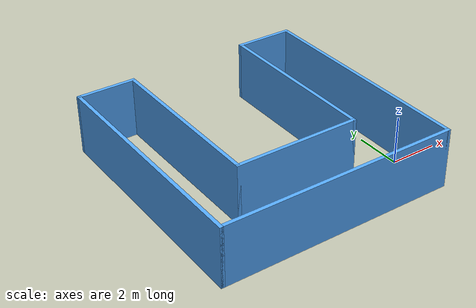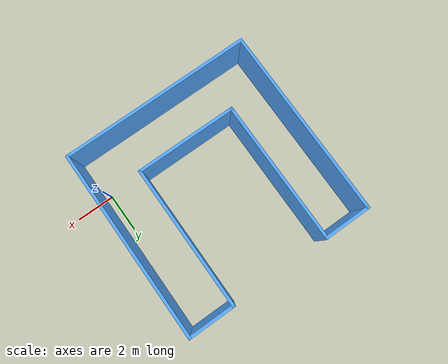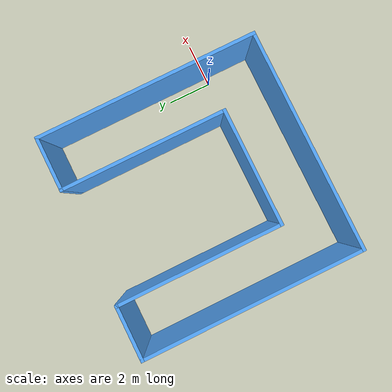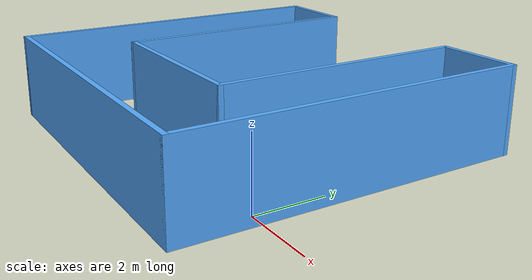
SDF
<?xml version='1.0'?>
<sdf version='1.6'>
  <model name='mybuilding'>
    <pose frame=''>-4.54811 2.73035 0 0 -0 0</pose>
    <link name='Wall_1'>
      <collision name='Wall_1_Collision'>
        <geometry>
          <box>
            <size>2.5 0.15 2.5</size>
          </box>
        </geometry>
        <pose frame=''>0 0 1.25 0 -0 0</pose>
      </collision>
      <visual name='Wall_1_Visual'>
        <pose frame=''>0 0 1.25 0 -0 0</pose>
        <geometry>
          <box>
            <size>2.5 0.15 2.5</size>
          </box>
        </geometry>
        <material>
          <script>
            <uri>file://media/materials/scripts/gazebo.material</uri>
            <name>Gazebo/Grey</name>
          </script>
          <ambient>0.333333 0.666667 1 1</ambient>
        </material>
        <meta>
          <layer>0</layer>
        </meta>
      </visual>
      <pose frame=''>-3.75 4.925 0 0 -0 0</pose>
    </link>
    <link name='Wall_10'>
      <collision name='Wall_10_Collision'>
        <geometry>
          <box>
            <size>2.5 0.15 2.5</size>
          </box>
        </geometry>
        <pose frame=''>0 0 1.25 0 -0 0</pose>
      </collision>
      <visual name='Wall_10_Visual'>
        <pose frame=''>0 0 1.25 0 -0 0</pose>
        <geometry>
          <box>
            <size>2.5 0.15 2.5</size>
          </box>
        </geometry>
        <material>
          <script>
            <uri>file://media/materials/scripts/gazebo.material</uri>
            <name>Gazebo/Grey</name>
          </script>
          <ambient>0.333333 0.666667 1 1</ambient>
        </material>
        <meta>
          <layer>0</layer>
        </meta>
      </visual>
      <pose frame=''>3.75 4.925 0 0 -0 3.14159</pose>
    </link>
    <link name='Wall_11'>
      <collision name='Wall_11_Collision'>
        <geometry>
          <box>
            <size>7.5 0.15 2.5</size>
          </box>
        </geometry>
        <pose frame=''>0 0 1.25 0 -0 0</pose>
      </collision>
      <visual name='Wall_11_Visual'>
        <pose frame=''>0 0 1.25 0 -0 0</pose>
        <geometry>
          <box>
            <size>7.5 0.15 2.5</size>
          </box>
        </geometry>
        <material>
          <script>
            <uri>file://media/materials/scripts/gazebo.material</uri>
            <name>Gazebo/Grey</name>
          </script>
          <ambient>0.333333 0.666667 1 1</ambient>
        </material>
        <meta>
          <layer>0</layer>
        </meta>
      </visual>
      <pose frame=''>2.575 1.25 0 0 0 -1.5708</pose>
    </link>
    <link name='Wall_14'>
      <collision name='Wall_14_Collision'>
        <geometry>
          <box>
            <size>7.5 0.15 2.5</size>
          </box>
        </geometry>
        <pose frame=''>0 0 1.25 0 -0 0</pose>
      </collision>
      <visual name='Wall_14_Visual'>
        <pose frame=''>0 0 1.25 0 -0 0</pose>
        <geometry>
          <box>
            <size>7.5 0.15 2.5</size>
          </box>
        </geometry>
        <material>
          <script>
            <uri>file://media/materials/scripts/gazebo.material</uri>
            <name>Gazebo/Grey</name>
          </script>
          <ambient>0.333333 0.666667 1 1</ambient>
        </material>
        <meta>
          <layer>0</layer>
        </meta>
      </visual>
      <pose frame=''>-2.575 1.25 0 0 0 -1.5708</pose>
    </link>
    <link name='Wall_16'>
      <collision name='Wall_16_Collision'>
        <geometry>
          <box>
            <size>5.3 0.15 2.5</size>
          </box>
        </geometry>
        <pose frame=''>0 0 1.25 0 -0 0</pose>
      </collision>
      <visual name='Wall_16_Visual'>
        <pose frame=''>0 0 1.25 0 -0 0</pose>
        <geometry>
          <box>
            <size>5.3 0.15 2.5</size>
          </box>
        </geometry>
        <material>
          <script>
            <uri>file://media/materials/scripts/gazebo.material</uri>
            <name>Gazebo/Grey</name>
          </script>
          <ambient>0.333333 0.666667 1 1</ambient>
        </material>
        <meta>
          <layer>0</layer>
        </meta>
      </visual>
      <pose frame=''>0 -2.425 0 0 -0 0</pose>
    </link>
    <link name='Wall_7'>
      <collision name='Wall_7_Collision'>
        <geometry>
          <box>
            <size>10 0.15 2.5</size>
          </box>
        </geometry>
        <pose frame=''>0 0 1.25 0 -0 0</pose>
      </collision>
      <visual name='Wall_7_Visual'>
        <pose frame=''>0 0 1.25 0 -0 0</pose>
        <geometry>
          <box>
            <size>10 0.15 2.5</size>
          </box>
        </geometry>
        <material>
          <script>
            <uri>file://media/materials/scripts/gazebo.material</uri>
            <name>Gazebo/Grey</name>
          </script>
          <ambient>0.333333 0.666667 1 1</ambient>
        </material>
        <meta>
          <layer>0</layer>
        </meta>
      </visual>
      <pose frame=''>-4.925 0 0 0 0 -1.5708</pose>
    </link>
    <link name='Wall_8'>
      <collision name='Wall_8_Collision'>
        <geometry>
          <box>
            <size>10 0.15 2.5</size>
          </box>
        </geometry>
        <pose frame=''>0 0 1.25 0 -0 0</pose>
      </collision>
      <visual name='Wall_8_Visual'>
        <pose frame=''>0 0 1.25 0 -0 0</pose>
        <geometry>
          <box>
            <size>10 0.15 2.5</size>
          </box>
        </geometry>
        <material>
          <script>
            <uri>file://media/materials/scripts/gazebo.material</uri>
            <name>Gazebo/Grey</name>
          </script>
          <ambient>0.333333 0.666667 1 1</ambient>
        </material>
        <meta>
          <layer>0</layer>
        </meta>
      </visual>
      <pose frame=''>0 -4.925 0 0 -0 0</pose>
    </link>
    <link name='Wall_9'>
      <collision name='Wall_9_Collision'>
        <geometry>
          <box>
            <size>10 0.15 2.5</size>
          </box>
        </geometry>
        <pose frame=''>0 0 1.25 0 -0 0</pose>
      </collision>
      <visual name='Wall_9_Visual'>
        <pose frame=''>0 0 1.25 0 -0 0</pose>
        <geometry>
          <box>
            <size>10 0.15 2.5</size>
          </box>
        </geometry>
        <material>
          <script>
            <uri>file://media/materials/scripts/gazebo.material</uri>
            <name>Gazebo/Grey</name>
          </script>
          <ambient>0.333333 0.666667 1 1</ambient>
        </material>
        <meta>
          <layer>0</layer>
        </meta>
      </visual>
      <pose frame=''>4.925 0 0 0 -0 1.5708</pose>
    </link>
    <static>1</static>
  </model>
</sdf>
